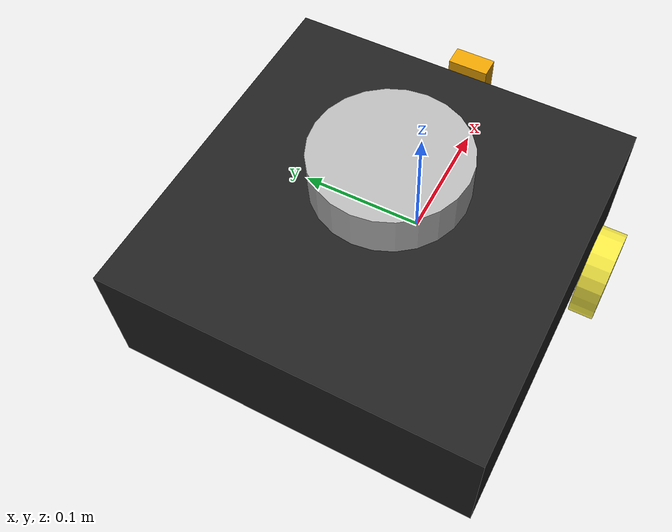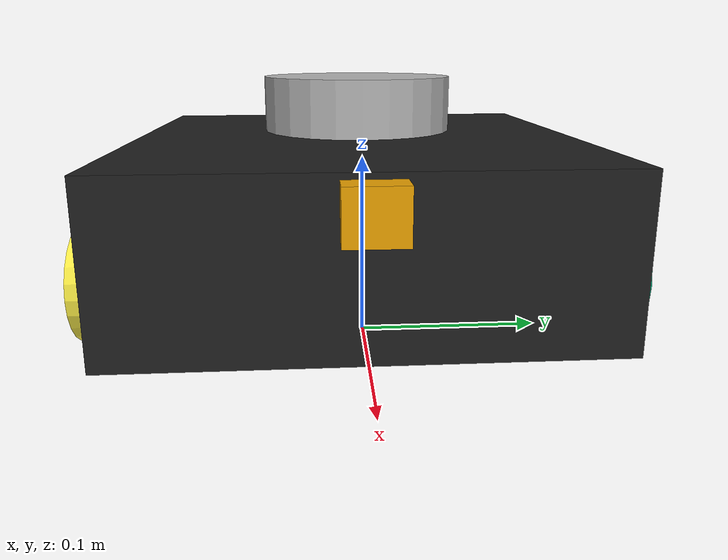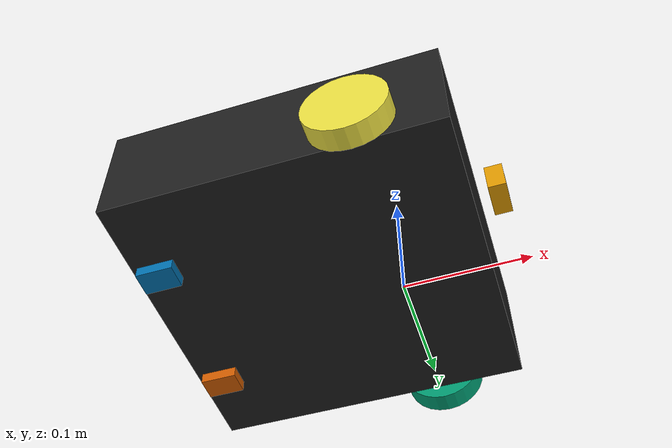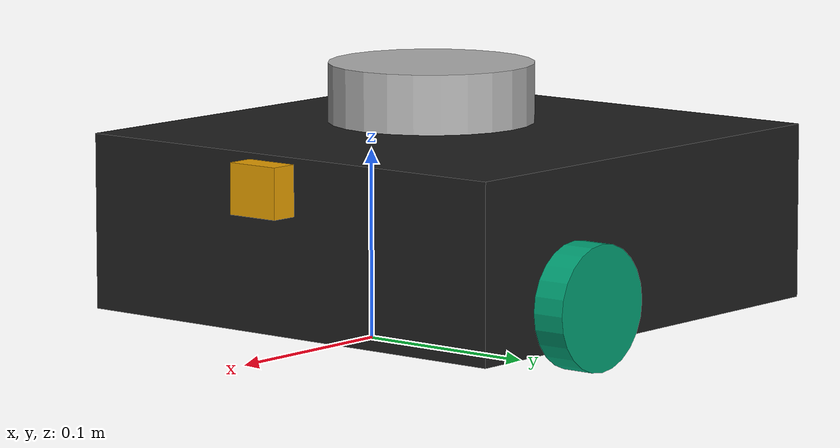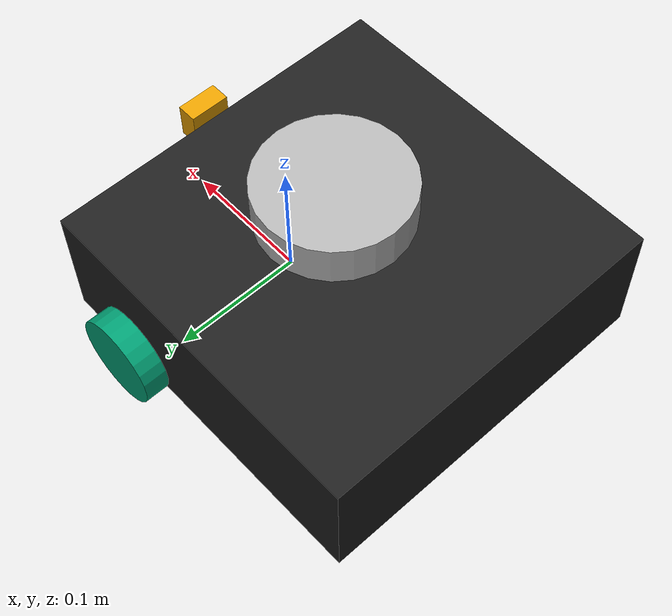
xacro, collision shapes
<?xml version="1.0" ?>
<robot name="turtlebot3_waffle_pi" xmlns:xacro="http://ros.org/wiki/xacro">
  <xacro:include filename="$(find turtlebot3_description)/urdf/common_properties.xacro"/>
  <xacro:include filename="$(find turtlebot3_description)/urdf/turtlebot3_waffle_pi.gazebo.xacro"/>

  <link name="base_footprint"/>

  <joint name="base_joint" type="fixed">
    <parent link="base_footprint"/>
    <child link="base_link" />
    <origin xyz="0 0 0.010" rpy="0 0 0"/>
  </joint>

  <link name="base_link">
    <visual>
      <origin xyz="-0.064 0 0.0" rpy="0 0 0"/>
      <geometry>
        <mesh filename="package://turtlebot3_description/meshes/bases/waffle_pi_base.stl" scale="0.001 0.001 0.001"/>
      </geometry>
      <material name="light_black"/>
    </visual>

    <collision>
      <origin xyz="-0.064 0 0.047" rpy="0 0 0"/>
      <geometry>
        <box size="0.266 0.266 0.094"/>
      </geometry>
    </collision>

    <inertial>
      <origin xyz="0 0 0" rpy="0 0 0"/>
      <mass value="1.3729096e+00"/>
      <inertia ixx="8.7002718e-03" ixy="-4.7576583e-05" ixz="1.1160499e-04"
               iyy="8.6195418e-03" iyz="-3.5422299e-06"
               izz="1.4612727e-02" />
    </inertial>
  </link>

  <joint name="wheel_left_joint" type="continuous">
    <parent link="base_link"/>
    <child link="wheel_left_link"/>
    <origin xyz="0.0 0.144 0.023" rpy="-1.57 0 0"/>
    <axis xyz="0 0 1"/>
  </joint>

  <link name="wheel_left_link">
    <visual>
      <origin xyz="0 0 0" rpy="1.57 0 0"/>
      <geometry>
        <mesh filename="package://turtlebot3_description/meshes/wheels/left_tire.stl" scale="0.001 0.001 0.001"/>
      </geometry>
      <material name="dark"/>
    </visual>

    <collision>
      <origin xyz="0 0 0" rpy="0 0 0"/>
      <geometry>
        <cylinder length="0.018" radius="0.033"/>
      </geometry>
    </collision>

    <inertial>
      <origin xyz="0 0 0" />
      <mass value="2.8498940e-02" />
      <inertia ixx="1.1175580e-05" ixy="-4.2369783e-11" ixz="-5.9381719e-09"
               iyy="1.1192413e-05" iyz="-1.4400107e-11"
               izz="2.0712558e-05" />
      </inertial>
  </link>

  <joint name="wheel_right_joint" type="continuous">
    <parent link="base_link"/>
    <child link="wheel_right_link"/>
    <origin xyz="0.0 -0.144 0.023" rpy="-1.57 0 0"/>
    <axis xyz="0 0 1"/>
  </joint>

  <link name="wheel_right_link">
    <visual>
      <origin xyz="0 0 0" rpy="1.57 0 0"/>
      <geometry>
        <mesh filename="package://turtlebot3_description/meshes/wheels/right_tire.stl" scale="0.001 0.001 0.001"/>
      </geometry>
      <material name="dark"/>
    </visual>

    <collision>
      <origin xyz="0 0 0" rpy="0 0 0"/>
      <geometry>
        <cylinder length="0.018" radius="0.033"/>
      </geometry>
    </collision>

    <inertial>
      <origin xyz="0 0 0" />
      <mass value="2.8498940e-02" />
      <inertia ixx="1.1175580e-05" ixy="-4.2369783e-11" ixz="-5.9381719e-09"
               iyy="1.1192413e-05" iyz="-1.4400107e-11"
               izz="2.0712558e-05" />
      </inertial>
  </link>

  <joint name="caster_back_right_joint" type="fixed">
    <parent link="base_link"/>
    <child link="caster_back_right_link"/>
    <origin xyz="-0.177 -0.064 -0.004" rpy="-1.57 0 0"/>
  </joint>

  <link name="caster_back_right_link">
    <collision>
      <origin xyz="0 0.001 0" rpy="0 0 0"/>
      <geometry>
        <box size="0.030 0.009 0.020"/>
      </geometry>
    </collision>

    <inertial>
      <origin xyz="0 0 0" />
      <mass value="0.005" />
      <inertia ixx="0.001" ixy="0.0" ixz="0.0"
               iyy="0.001" iyz="0.0"
               izz="0.001" />
    </inertial>
  </link>

  <joint name="caster_back_left_joint" type="fixed">
    <parent link="base_link"/>
    <child link="caster_back_left_link"/>
    <origin xyz="-0.177 0.064 -0.004" rpy="-1.57 0 0"/>
  </joint>

  <link name="caster_back_left_link">
    <collision>
      <origin xyz="0 0.001 0" rpy="0 0 0"/>
      <geometry>
        <box size="0.030 0.009 0.020"/>
      </geometry>
    </collision>

    <inertial>
      <origin xyz="0 0 0" />
      <mass value="0.005" />
      <inertia ixx="0.001" ixy="0.0" ixz="0.0"
               iyy="0.001" iyz="0.0"
               izz="0.001" />
    </inertial>
  </link>

  <joint name="imu_joint" type="fixed">
    <parent link="base_link"/>
    <child link="imu_link"/>
    <origin xyz="0.0 0 0.068" rpy="0 0 0"/>
  </joint>

  <link name="imu_link"/>

  <joint name="scan_joint" type="fixed">
    <parent link="base_link"/>
    <child link="base_scan"/>
    <origin xyz="-0.064 0 0.122" rpy="0 0 0"/>
  </joint>

  <link name="base_scan">
    <visual>
      <origin xyz="0 0 0.0" rpy="0 0 0"/>
      <geometry>
        <mesh filename="package://turtlebot3_description/meshes/sensors/lds.stl" scale="0.001 0.001 0.001"/>
      </geometry>
      <material name="dark"/>
    </visual>

    <collision>
      <origin xyz="0.015 0 -0.0065" rpy="0 0 0"/>
      <geometry>
        <cylinder length="0.0315" radius="0.055"/>
      </geometry>
    </collision>

    <inertial>
      <mass value="0.114" />
      <origin xyz="0 0 0" />
      <inertia ixx="0.001" ixy="0.0" ixz="0.0"
               iyy="0.001" iyz="0.0"
               izz="0.001" />
    </inertial>
  </link>

  <joint name="camera_joint" type="fixed">
    <origin xyz="0.073 -0.011 0.084" rpy="0 1.57 0"/>
    <parent link="base_link"/>
    <child link="camera_link"/>
  </joint>

  <link name="camera_link">
    <collision>
      <origin xyz="0.005 0.011 0.013" rpy="0 1.57 0"/>
      <geometry>
        <box size="0.015 0.030 0.027"/>
      </geometry>
    </collision>
  </link>

  <joint name="camera_rgb_joint" type="fixed">
    <origin xyz="0.003 0.011 0.009" rpy="0 1.57 0"/>
    <parent link="camera_link"/>
    <child link="camera_rgb_frame"/>
  </joint>
  <link name="camera_rgb_frame"/>

  <joint name="camera_rgb_optical_joint" type="fixed">
    <origin xyz="0 0 0" rpy="-1.57 0 -1.57"/>
    <parent link="camera_rgb_frame"/>
    <child link="camera_rgb_optical_frame"/>
  </joint>
  <link name="camera_rgb_optical_frame"/>

  <gazebo>
    <plugin name="p3d_base_controller" filename="libgazebo_ros_p3d.so">
      <alwaysOn>true</alwaysOn>
      <updateRate>50.0</updateRate>
      <bodyName>base_link</bodyName>
      <topicName>odom2</topicName>
      <gaussianNoise>0.01</gaussianNoise>
      <frameName>world</frameName>
      <xyzOffsets>0 0 0</xyzOffsets>
      <rpyOffsets>0 0 0</rpyOffsets>
    </plugin>
  </gazebo>

  <!-- camera -->
  <gazebo reference="camera_link">
    <sensor type="camera" name="camera1">
      <update_rate>30.0</update_rate>
      <camera name="head">
        <horizontal_fov>1.3962634</horizontal_fov>
        <image>
          <width>3280</width>
          <height>2464</height>
          <format>R8G8B8</format>
        </image>
        <clip>
          <near>0.02</near>
          <far>300</far>
        </clip>
        <noise>
          <type>gaussian</type>
          <!-- Noise is sampled independently per pixel on each frame.
               That pixel's noise value is added to each of its color
               channels, which at that point lie in the range [0,1]. -->
          <mean>0.0</mean>
          <stddev>0.007</stddev>
        </noise>
      </camera>
      <plugin name="camera_controller" filename="libgazebo_ros_camera.so">
        <alwaysOn>true</alwaysOn>
        <updateRate>0.0</updateRate>
        <cameraName>camera1</cameraName>
        <imageTopicName>image_raw</imageTopicName>
        <cameraInfoTopicName>camera_info</cameraInfoTopicName>
        <frameName>camera_link</frameName>
        <hackBaseline>0.07</hackBaseline>
        <distortionK1>0.0</distortionK1>
        <distortionK2>0.0</distortionK2>
        <distortionK3>0.0</distortionK3>
        <distortionT1>0.0</distortionT1>
        <distortionT2>0.0</distortionT2>
      </plugin>
    </sensor>
  </gazebo>

</robot>
